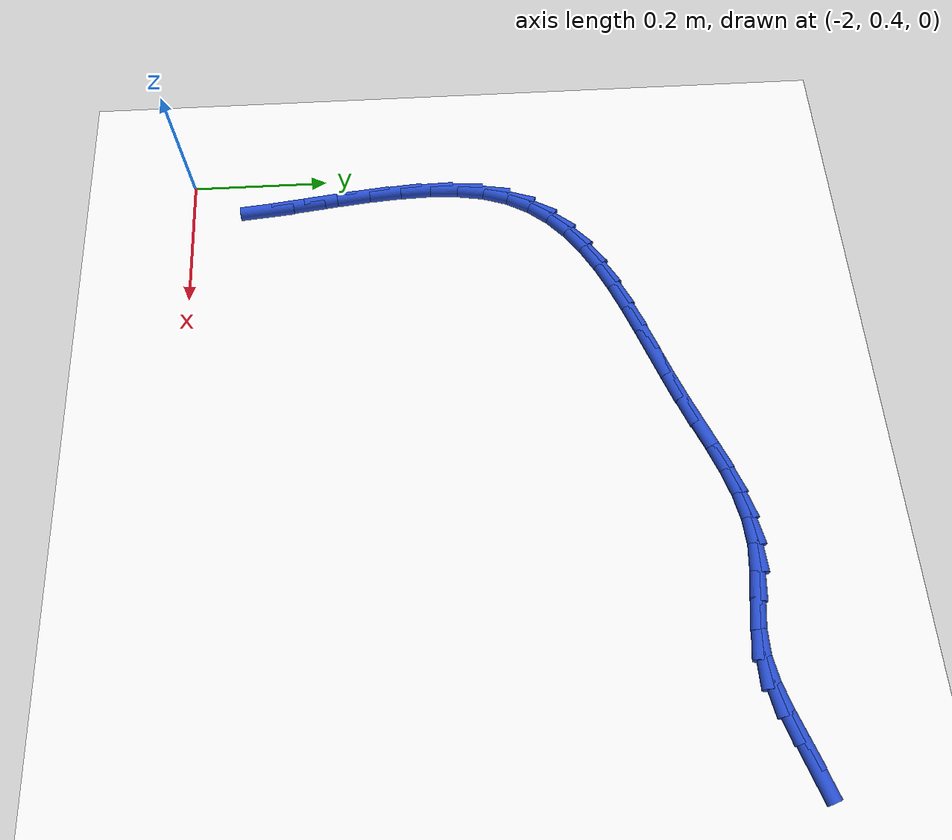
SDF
<sdf version="1.6">
 <world name="default">
  <model name="ground_plane">
   <static>1</static>
   <link name="link">
    <collision name="collision">
     <geometry><plane><normal>0 0 1</normal><size>100 100</size></plane></geometry>
     <surface><friction><ode><mu>100</mu><mu2>50</mu2></ode></friction></surface>
    </collision>
    <visual name="visual">
     <cast_shadows>0</cast_shadows>
     <geometry><plane><normal>0 0 1</normal><size>100 100</size></plane></geometry>
     <material>
      <script><uri>file://media/materials/scripts/gazebo.material</uri><name>Gazebo/WhiteGlow</name></script>
     </material>
    </visual>
   </link>
  </model>
  <model name="line">
   <link name="link_50">
    <pose>-1.0944666459044428 1.1899076267591426 0.01 0 1.57 0.3314110963329146</pose>
    <collision name="collision">
     <geometry><cylinder><radius>0.01</radius><length>0.08</length></cylinder></geometry>
    </collision>
    <visual name="visual">
     <material>
      <script><name>Gazebo/Blue</name><uri>file://media/materials/scripts/gazebo.material</uri></script>
     </material>
     <geometry><cylinder><radius>0.01</radius><length>0.08</length></cylinder></geometry>
    </visual>
   </link>
   <link name="link_51">
    <pose>-1.1299718682189255 1.1776901987453592 0.01 0 1.57 0.3498463522970453</pose>
    <collision name="collision">
     <geometry><cylinder><radius>0.01</radius><length>0.08</length></cylinder></geometry>
    </collision>
    <visual name="visual">
     <material>
      <script><name>Gazebo/Blue</name><uri>file://media/materials/scripts/gazebo.material</uri></script>
     </material>
     <geometry><cylinder><radius>0.01</radius><length>0.08</length></cylinder></geometry>
    </visual>
   </link>
   <link name="link_52">
    <pose>-1.1640365525133727 1.1652615493416412 0.01 0 1.57 0.30257792461313665</pose>
    <collision name="collision">
     <geometry><cylinder><radius>0.01</radius><length>0.08</length></cylinder></geometry>
    </collision>
    <visual name="visual">
     <material>
      <script><name>Gazebo/Blue</name><uri>file://media/materials/scripts/gazebo.material</uri></script>
     </material>
     <geometry><cylinder><radius>0.01</radius><length>0.08</length></cylinder></geometry>
    </visual>
   </link>
   <link name="link_53">
    <pose>-1.1976402414102638 1.1547717171883192 0.01 0 1.57 0.18543449530653613</pose>
    <collision name="collision">
     <geometry><cylinder><radius>0.01</radius><length>0.08</length></cylinder></geometry>
    </collision>
    <visual name="visual">
     <material>
      <script><name>Gazebo/Blue</name><uri>file://media/materials/scripts/gazebo.material</uri></script>
     </material>
     <geometry><cylinder><radius>0.01</radius><length>0.08</length></cylinder></geometry>
    </visual>
   </link>
   <link name="link_54">
    <pose>-1.2317624775320786 1.1483707409257244 0.01 0 1.57 0.008613292092740985</pose>
    <collision name="collision">
     <geometry><cylinder><radius>0.01</radius><length>0.08</length></cylinder></geometry>
    </collision>
    <visual name="visual">
     <material>
      <script><name>Gazebo/Blue</name><uri>file://media/materials/scripts/gazebo.material</uri></script>
     </material>
     <geometry><cylinder><radius>0.01</radius><length>0.08</length></cylinder></geometry>
    </visual>
   </link>
   <link name="link_55">
    <pose>-1.2673378902562373 1.1480643119267073 0.01 0 1.57 -0.1282680408193536</pose>
    <collision name="collision">
     <geometry><cylinder><radius>0.01</radius><length>0.08</length></cylinder></geometry>
    </collision>
    <visual name="visual">
     <material>
      <script><name>Gazebo/Blue</name><uri>file://media/materials/scripts/gazebo.material</uri></script>
     </material>
     <geometry><cylinder><radius>0.01</radius><length>0.08</length></cylinder></geometry>
    </visual>
   </link>
   <link name="link_56">
    <pose>-1.3043618807767237 1.1528395237843636 0.01 0 1.57 -0.1579123180442479</pose>
    <collision name="collision">
     <geometry><cylinder><radius>0.01</radius><length>0.08</length></cylinder></geometry>
    </collision>
    <visual name="visual">
     <material>
      <script><name>Gazebo/Blue</name><uri>file://media/materials/scripts/gazebo.material</uri></script>
     </material>
     <geometry><cylinder><radius>0.01</radius><length>0.08</length></cylinder></geometry>
    </visual>
   </link>
   <link name="link_57">
    <pose>-1.3419399425545793 1.1588233839548638 0.01 0 1.57 -0.08603056462603116</pose>
    <collision name="collision">
     <geometry><cylinder><radius>0.01</radius><length>0.08</length></cylinder></geometry>
    </collision>
    <visual name="visual">
     <material>
      <script><name>Gazebo/Blue</name><uri>file://media/materials/scripts/gazebo.material</uri></script>
     </material>
     <geometry><cylinder><radius>0.01</radius><length>0.08</length></cylinder></geometry>
    </visual>
   </link>
   <link name="link_58">
    <pose>-1.3791429454230293 1.1620318988882357 0.01 0 1.57 0.06459786658534925</pose>
    <collision name="collision">
     <geometry><cylinder><radius>0.01</radius><length>0.08</length></cylinder></geometry>
    </collision>
    <visual name="visual">
     <material>
      <script><name>Gazebo/Blue</name><uri>file://media/materials/scripts/gazebo.material</uri></script>
     </material>
     <geometry><cylinder><radius>0.01</radius><length>0.08</length></cylinder></geometry>
    </visual>
   </link>
   <link name="link_59">
    <pose>-1.4153534298748203 1.1596895197788168 0.01 0 1.57 0.2034330405025382</pose>
    <collision name="collision">
     <geometry><cylinder><radius>0.01</radius><length>0.08</length></cylinder></geometry>
    </collision>
    <visual name="visual">
     <material>
      <script><name>Gazebo/Blue</name><uri>file://media/materials/scripts/gazebo.material</uri></script>
     </material>
     <geometry><cylinder><radius>0.01</radius><length>0.08</length></cylinder></geometry>
    </visual>
   </link>
   <link name="link_60">
    <pose>-1.4508186635186442 1.1523735156323613 0.01 0 1.57 0.30707886094022574</pose>
    <collision name="collision">
     <geometry><cylinder><radius>0.01</radius><length>0.08</length></cylinder></geometry>
    </collision>
    <visual name="visual">
     <material>
      <script><name>Gazebo/Blue</name><uri>file://media/materials/scripts/gazebo.material</uri></script>
     </material>
     <geometry><cylinder><radius>0.01</radius><length>0.08</length></cylinder></geometry>
    </visual>
   </link>
   <link name="link_61">
    <pose>-1.4859346610823136 1.1412378946145003 0.01 0 1.57 0.3740202447851873</pose>
    <collision name="collision">
     <geometry><cylinder><radius>0.01</radius><length>0.08</length></cylinder></geometry>
    </collision>
    <visual name="visual">
     <material>
      <script><name>Gazebo/Blue</name><uri>file://media/materials/scripts/gazebo.material</uri></script>
     </material>
     <geometry><cylinder><radius>0.01</radius><length>0.08</length></cylinder></geometry>
    </visual>
   </link>
   <link name="link_62">
    <pose>-1.5210974372936383 1.1274366648908647 0.01 0 1.57 0.4061557813907793</pose>
    <collision name="collision">
     <geometry><cylinder><radius>0.01</radius><length>0.08</length></cylinder></geometry>
    </collision>
    <visual name="visual">
     <material>
      <script><name>Gazebo/Blue</name><uri>file://media/materials/scripts/gazebo.material</uri></script>
     </material>
     <geometry><cylinder><radius>0.01</radius><length>0.08</length></cylinder></geometry>
    </visual>
   </link>
   <link name="link_63">
    <pose>-1.5567030068804297 1.112123834627086 0.01 0 1.57 0.40608277976718715</pose>
    <collision name="collision">
     <geometry><cylinder><radius>0.01</radius><length>0.08</length></cylinder></geometry>
    </collision>
    <visual name="visual">
     <material>
      <script><name>Gazebo/Blue</name><uri>file://media/materials/scripts/gazebo.material</uri></script>
     </material>
     <geometry><cylinder><radius>0.01</radius><length>0.08</length></cylinder></geometry>
    </visual>
   </link>
   <link name="link_64">
    <pose>-1.5931473845704993 1.0964534119887959 0.01 0 1.57 0.38018506099345506</pose>
    <collision name="collision">
     <geometry><cylinder><radius>0.01</radius><length>0.08</length></cylinder></geometry>
    </collision>
    <visual name="visual">
     <material>
      <script><name>Gazebo/Blue</name><uri>file://media/materials/scripts/gazebo.material</uri></script>
     </material>
     <geometry><cylinder><radius>0.01</radius><length>0.08</length></cylinder></geometry>
    </visual>
   </link>
   <link name="link_65">
    <pose>-1.6307365694512521 1.081431746729248 0.01 0 1.57 0.3593951628032514</pose>
    <collision name="collision">
     <geometry><cylinder><radius>0.01</radius><length>0.08</length></cylinder></geometry>
    </collision>
    <visual name="visual">
     <material>
      <script><name>Gazebo/Blue</name><uri>file://media/materials/scripts/gazebo.material</uri></script>
     </material>
     <geometry><cylinder><radius>0.01</radius><length>0.08</length></cylinder></geometry>
    </visual>
   </link>
   <link name="link_66">
    <pose>-1.669131121927534 1.067006434248297 0.01 0 1.57 0.35595938100150765</pose>
    <collision name="collision">
     <geometry><cylinder><radius>0.01</radius><length>0.08</length></cylinder></geometry>
    </collision>
    <visual name="visual">
     <material>
      <script><name>Gazebo/Blue</name><uri>file://media/materials/scripts/gazebo.material</uri></script>
     </material>
     <geometry><cylinder><radius>0.01</radius><length>0.08</length></cylinder></geometry>
    </visual>
   </link>
   <link name="link_67">
    <pose>-1.7077098974092173 1.0526629712246305 0.01 0 1.57 0.36965076799145635</pose>
    <collision name="collision">
     <geometry><cylinder><radius>0.01</radius><length>0.08</length></cylinder></geometry>
    </collision>
    <visual name="visual">
     <material>
      <script><name>Gazebo/Blue</name><uri>file://media/materials/scripts/gazebo.material</uri></script>
     </material>
     <geometry><cylinder><radius>0.01</radius><length>0.08</length></cylinder></geometry>
    </visual>
   </link>
   <link name="link_68">
    <pose>-1.745850577147268 1.0378849282889833 0.01 0 1.57 0.4011837873824338</pose>
    <collision name="collision">
     <geometry><cylinder><radius>0.01</radius><length>0.08</length></cylinder></geometry>
    </collision>
    <visual name="visual">
     <material>
      <script><name>Gazebo/Blue</name><uri>file://media/materials/scripts/gazebo.material</uri></script>
     </material>
     <geometry><cylinder><radius>0.01</radius><length>0.08</length></cylinder></geometry>
    </visual>
   </link>
   <link name="link_69">
    <pose>-1.7829308423926526 1.0221558760720904 0.01 0 1.57 0.4522316653798287</pose>
    <collision name="collision">
     <geometry><cylinder><radius>0.01</radius><length>0.08</length></cylinder></geometry>
    </collision>
    <visual name="visual">
     <material>
      <script><name>Gazebo/Blue</name><uri>file://media/materials/scripts/gazebo.material</uri></script>
     </material>
     <geometry><cylinder><radius>0.01</radius><length>0.08</length></cylinder></geometry>
    </visual>
   </link>
   <link name="link_70">
    <pose>-1.8183283743963377 1.0049593852046865 0.01 0 1.57 0.5252834680330185</pose>
    <collision name="collision">
     <geometry><cylinder><radius>0.01</radius><length>0.08</length></cylinder></geometry>
    </collision>
    <visual name="visual">
     <material>
      <script><name>Gazebo/Blue</name><uri>file://media/materials/scripts/gazebo.material</uri></script>
     </material>
     <geometry><cylinder><radius>0.01</radius><length>0.08</length></cylinder></geometry>
    </visual>
   </link>
   <link name="link_71">
    <pose>-1.85142085440929 0.9857790263175079 0.01 0 1.57 0.6231880504689704</pose>
    <collision name="collision">
     <geometry><cylinder><radius>0.01</radius><length>0.08</length></cylinder></geometry>
    </collision>
    <visual name="visual">
     <material>
      <script><name>Gazebo/Blue</name><uri>file://media/materials/scripts/gazebo.material</uri></script>
     </material>
     <geometry><cylinder><radius>0.01</radius><length>0.08</length></cylinder></geometry>
    </visual>
   </link>
   <link name="link_72">
    <pose>-1.8815859636824757 0.9640983700412883 0.01 0 1.57 0.7480362558185244</pose>
    <collision name="collision">
     <geometry><cylinder><radius>0.01</radius><length>0.08</length></cylinder></geometry>
    </collision>
    <visual name="visual">
     <material>
      <script><name>Gazebo/Blue</name><uri>file://media/materials/scripts/gazebo.material</uri></script>
     </material>
     <geometry><cylinder><radius>0.01</radius><length>0.08</length></cylinder></geometry>
    </visual>
   </link>
   <link name="link_73">
    <pose>-1.9082013834668616 0.9394009870067631 0.01 0 1.57 0.899108724949676</pose>
    <collision name="collision">
     <geometry><cylinder><radius>0.01</radius><length>0.08</length></cylinder></geometry>
    </collision>
    <visual name="visual">
     <material>
      <script><name>Gazebo/Blue</name><uri>file://media/materials/scripts/gazebo.material</uri></script>
     </material>
     <geometry><cylinder><radius>0.01</radius><length>0.08</length></cylinder></geometry>
    </visual>
   </link>
   <link name="link_74">
    <pose>-1.9306447950134131 0.9111704478446672 0.01 0 1.57 1.070453496484405</pose>
    <collision name="collision">
     <geometry><cylinder><radius>0.01</radius><length>0.08</length></cylinder></geometry>
    </collision>
    <visual name="visual">
     <material>
      <script><name>Gazebo/Blue</name><uri>file://media/materials/scripts/gazebo.material</uri></script>
     </material>
     <geometry><cylinder><radius>0.01</radius><length>0.08</length></cylinder></geometry>
    </visual>
   </link>
   <link name="link_75">
    <pose>-1.9482938795730975 0.8788903231857358 0.01 0 1.57 1.2501654151754458</pose>
    <collision name="collision">
     <geometry><cylinder><radius>0.01</radius><length>0.08</length></cylinder></geometry>
    </collision>
    <visual name="visual">
     <material>
      <script><name>Gazebo/Blue</name><uri>file://media/materials/scripts/gazebo.material</uri></script>
     </material>
     <geometry><cylinder><radius>0.01</radius><length>0.08</length></cylinder></geometry>
    </visual>
   </link>
   <link name="link_76">
    <pose>-1.9605291811626064 0.8420469649930566 0.01 0 1.57 1.4108313898339337</pose>
    <collision name="collision">
     <geometry><cylinder><radius>0.01</radius><length>0.08</length></cylinder></geometry>
    </collision>
    <visual name="visual">
     <material>
      <script><name>Gazebo/Blue</name><uri>file://media/materials/scripts/gazebo.material</uri></script>
     </material>
     <geometry><cylinder><radius>0.01</radius><length>0.08</length></cylinder></geometry>
    </visual>
   </link>
   <link name="link_77">
    <pose>-1.967216649468028 0.8005983231954688 0.01 0 1.57 1.5257180630345022</pose>
    <collision name="collision">
     <geometry><cylinder><radius>0.01</radius><length>0.08</length></cylinder></geometry>
    </collision>
    <visual name="visual">
     <material>
      <script><name>Gazebo/Blue</name><uri>file://media/materials/scripts/gazebo.material</uri></script>
     </material>
     <geometry><cylinder><radius>0.01</radius><length>0.08</length></cylinder></geometry>
    </visual>
   </link>
   <link name="link_78">
    <pose>-1.9692509025557872 0.7555017549108624 0.01 0 1.57 -1.5373799631421574</pose>
    <collision name="collision">
     <geometry><cylinder><radius>0.01</radius><length>0.08</length></cylinder></geometry>
    </collision>
    <visual name="visual">
     <material>
      <script><name>Gazebo/Blue</name><uri>file://media/materials/scripts/gazebo.material</uri></script>
     </material>
     <geometry><cylinder><radius>0.01</radius><length>0.08</length></cylinder></geometry>
    </visual>
   </link>
   <link name="link_79">
    <pose>-1.9676576945604327 0.7078420230681055 0.01 0 1.57 -1.4856329678480424</pose>
    <collision name="collision">
     <geometry><cylinder><radius>0.01</radius><length>0.08</length></cylinder></geometry>
    </collision>
    <visual name="visual">
     <material>
      <script><name>Gazebo/Blue</name><uri>file://media/materials/scripts/gazebo.material</uri></script>
     </material>
     <geometry><cylinder><radius>0.01</radius><length>0.08</length></cylinder></geometry>
    </visual>
   </link>
   <link name="link_80">
    <pose>-1.9634627796165103 0.658703890596065 0.01 0 1.57 -1.454810834884861</pose>
    <collision name="collision">
     <geometry><cylinder><radius>0.01</radius><length>0.08</length></cylinder></geometry>
    </collision>
    <visual name="visual">
     <material>
      <script><name>Gazebo/Blue</name><uri>file://media/materials/scripts/gazebo.material</uri></script>
     </material>
     <geometry><cylinder><radius>0.01</radius><length>0.08</length></cylinder></geometry>
    </visual>
   </link>
   <link name="link_81">
    <pose>-1.9576919118585658 0.6091721204236084 0.01 0 1.57 -1.442089507361175</pose>
    <collision name="collision">
     <geometry><cylinder><radius>0.01</radius><length>0.08</length></cylinder></geometry>
    </collision>
    <visual name="visual">
     <material>
      <script><name>Gazebo/Blue</name><uri>file://media/materials/scripts/gazebo.material</uri></script>
     </material>
     <geometry><cylinder><radius>0.01</radius><length>0.08</length></cylinder></geometry>
    </visual>
   </link>
   <link name="link_82">
    <pose>-1.9513708454211478 0.560331475479603 0.01 0 1.57 -1.4472276751250552</pose>
    <collision name="collision">
     <geometry><cylinder><radius>0.01</radius><length>0.08</length></cylinder></geometry>
    </collision>
    <visual name="visual">
     <material>
      <script><name>Gazebo/Blue</name><uri>file://media/materials/scripts/gazebo.material</uri></script>
     </material>
     <geometry><cylinder><radius>0.01</radius><length>0.08</length></cylinder></geometry>
    </visual>
   </link>
   <link name="link_83">
    <pose>-1.945525334438802 0.5132667186929163 0.01 0 1.57 -1.472834923856593</pose>
    <collision name="collision">
     <geometry><cylinder><radius>0.01</radius><length>0.08</length></cylinder></geometry>
    </collision>
    <visual name="visual">
     <material>
      <script><name>Gazebo/Blue</name><uri>file://media/materials/scripts/gazebo.material</uri></script>
     </material>
     <geometry><cylinder><radius>0.01</radius><length>0.08</length></cylinder></geometry>
    </visual>
   </link>
  </model>
 </world>
</sdf>
